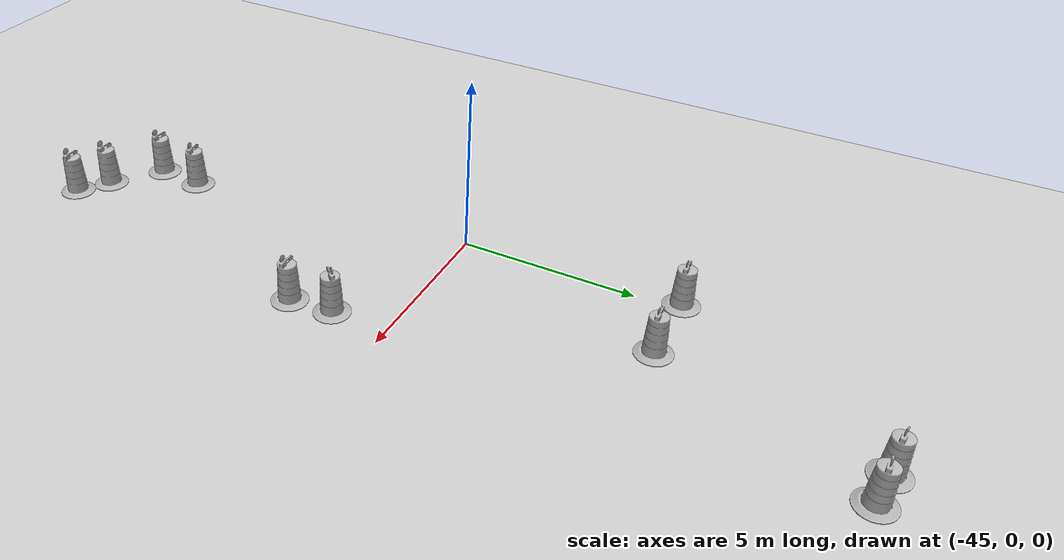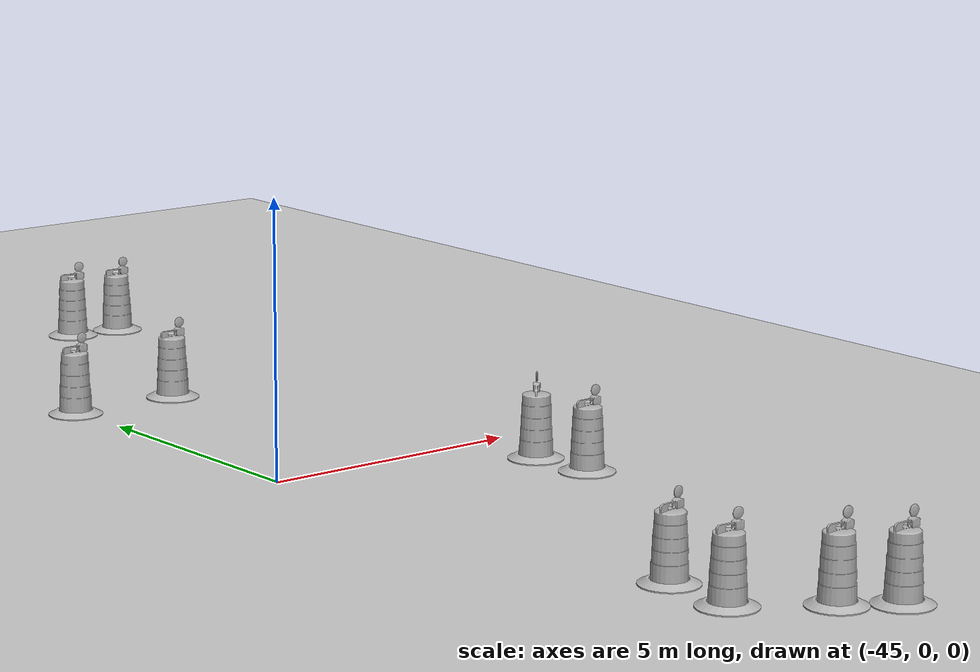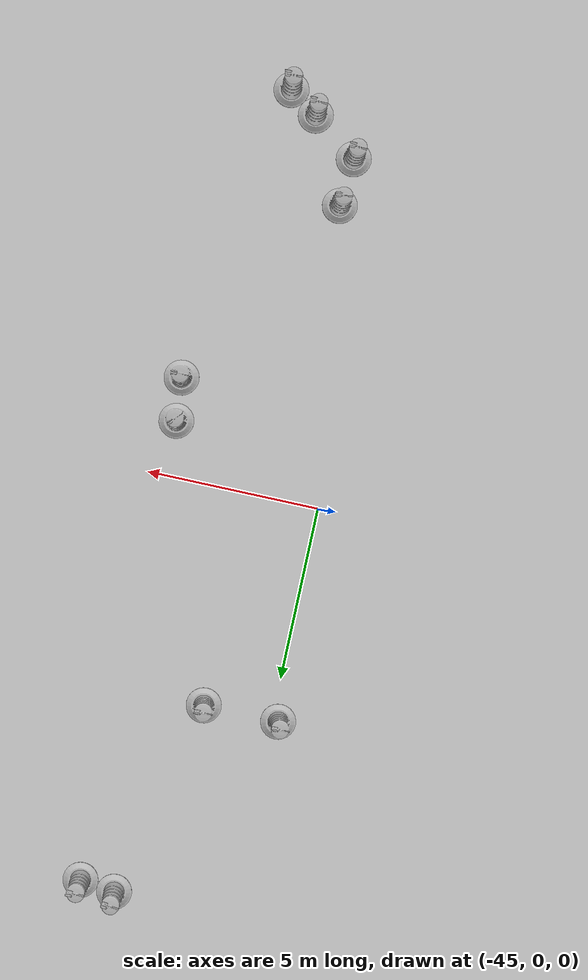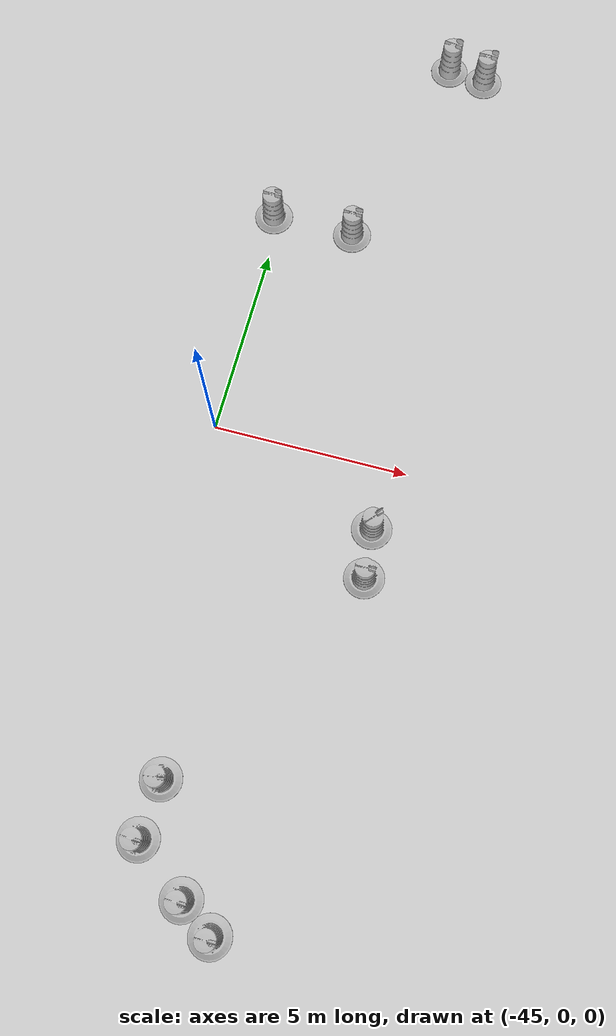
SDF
<sdf version="1.7">
 <world name="default">
  <model name="ground_plane">
   <static>1</static>
   <link name="link">
    <collision name="collision">
     <geometry><plane><normal>0 0 1</normal><size>100 100</size></plane></geometry>
     <surface>
      <contact><collide_bitmask>65535</collide_bitmask></contact>
      <friction><ode><mu>100</mu><mu2>50</mu2></ode></friction>
     </surface>
    </collision>
    <visual name="visual">
     <cast_shadows>0</cast_shadows>
     <geometry><plane><normal>0 0 1</normal><size>100 100</size></plane></geometry>
     <material>
      <script><uri>file://media/materials/scripts/gazebo.material</uri><name>Gazebo/Grey</name></script>
     </material>
    </visual>
   </link>
  </model>
  <model name="Construction Barrel_2">
   <link name="link">
    <inertial>
     <pose>0 0 0.4 0 -0 0</pose>
     <mass>500</mass>
     <inertia><ixx>51.2096</ixx><iyy>51.2096</iyy><izz>25</izz><ixy>0</ixy><ixz>0</ixz><iyz>0</iyz></inertia>
    </inertial>
    <collision name="collision">
     <geometry><mesh><uri>model://construction_barrel/meshes/construction_barrel.dae</uri></mesh></geometry>
    </collision>
    <visual name="visual">
     <geometry><mesh><uri>model://construction_barrel/meshes/construction_barrel.dae</uri></mesh></geometry>
    </visual>
   </link>
   <pose>-43.7577 -8.63429 0.024556 -1e-06 -1e-06 0.11968</pose>
  </model>
  <model name="Construction Barrel_3">
   <link name="link">
    <inertial>
     <pose>0 0 0.4 0 -0 0</pose>
     <mass>500</mass>
     <inertia><ixx>51.2096</ixx><iyy>51.2096</iyy><izz>25</izz><ixy>0</ixy><ixz>0</ixz><iyz>0</iyz></inertia>
    </inertial>
    <collision name="collision">
     <geometry><mesh><uri>model://construction_barrel/meshes/construction_barrel.dae</uri></mesh></geometry>
    </collision>
    <visual name="visual">
     <geometry><mesh><uri>model://construction_barrel/meshes/construction_barrel.dae</uri></mesh></geometry>
    </visual>
   </link>
   <pose>-43.8611 -10.0318 0.024555 2e-06 -0 -0.057818</pose>
  </model>
  <model name="Construction Barrel_4">
   <link name="link">
    <inertial>
     <pose>0 0 0.4 0 -0 0</pose>
     <mass>500</mass>
     <inertia><ixx>51.2096</ixx><iyy>51.2096</iyy><izz>25</izz><ixy>0</ixy><ixz>0</ixz><iyz>0</iyz></inertia>
    </inertial>
    <collision name="collision">
     <geometry><mesh><uri>model://construction_barrel/meshes/construction_barrel.dae</uri></mesh></geometry>
    </collision>
    <visual name="visual">
     <geometry><mesh><uri>model://construction_barrel/meshes/construction_barrel.dae</uri></mesh></geometry>
    </visual>
   </link>
   <pose>-41.6909 -11.5921 0.024556 -1e-06 -2e-06 0.0113</pose>
  </model>
  <model name="Construction Barrel_5">
   <link name="link">
    <inertial>
     <pose>0 0 0.4 0 -0 0</pose>
     <mass>500</mass>
     <inertia><ixx>51.2096</ixx><iyy>51.2096</iyy><izz>25</izz><ixy>0</ixy><ixz>0</ixz><iyz>0</iyz></inertia>
    </inertial>
    <collision name="collision">
     <geometry><mesh><uri>model://construction_barrel/meshes/construction_barrel.dae</uri></mesh></geometry>
    </collision>
    <visual name="visual">
     <geometry><mesh><uri>model://construction_barrel/meshes/construction_barrel.dae</uri></mesh></geometry>
    </visual>
   </link>
   <pose>-42.5303 -11.0218 0.024555 -1e-06 -4e-06 -0.032401</pose>
  </model>
  <model name="Construction Barrel_7">
   <link name="link">
    <inertial>
     <pose>0 0 0.4 0 -0 0</pose>
     <mass>500</mass>
     <inertia><ixx>51.2096</ixx><iyy>51.2096</iyy><izz>25</izz><ixy>0</ixy><ixz>0</ixz><iyz>0</iyz></inertia>
    </inertial>
    <collision name="collision">
     <geometry><mesh><uri>model://construction_barrel/meshes/construction_barrel.dae</uri></mesh></geometry>
    </collision>
    <visual name="visual">
     <geometry><mesh><uri>model://construction_barrel/meshes/construction_barrel.dae</uri></mesh></geometry>
    </visual>
   </link>
   <pose>-40.4928 -1.60632 0.024555 -0 -3e-06 0.838787</pose>
  </model>
  <model name="Construction Barrel_8">
   <link name="link">
    <inertial>
     <pose>0 0 0.4 0 -0 0</pose>
     <mass>500</mass>
     <inertia><ixx>51.2096</ixx><iyy>51.2096</iyy><izz>25</izz><ixy>0</ixy><ixz>0</ixz><iyz>0</iyz></inertia>
    </inertial>
    <collision name="collision">
     <geometry><mesh><uri>model://construction_barrel/meshes/construction_barrel.dae</uri></mesh></geometry>
    </collision>
    <visual name="visual">
     <geometry><mesh><uri>model://construction_barrel/meshes/construction_barrel.dae</uri></mesh></geometry>
    </visual>
   </link>
   <pose>-45.1878 6.21229 0.024555 4e-06 1e-06 0.000161</pose>
  </model>
  <model name="Construction Barrel_9">
   <link name="link">
    <inertial>
     <pose>0 0 0.4 0 -0 0</pose>
     <mass>500</mass>
     <inertia><ixx>51.2096</ixx><iyy>51.2096</iyy><izz>25</izz><ixy>0</ixy><ixz>0</ixz><iyz>0</iyz></inertia>
    </inertial>
    <collision name="collision">
     <geometry><mesh><uri>model://construction_barrel/meshes/construction_barrel.dae</uri></mesh></geometry>
    </collision>
    <visual name="visual">
     <geometry><mesh><uri>model://construction_barrel/meshes/construction_barrel.dae</uri></mesh></geometry>
    </visual>
   </link>
   <pose>-40.3738 -2.85059 0.024555 -1e-06 -2e-06 0.000153</pose>
  </model>
  <model name="Construction Barrel_10">
   <link name="link">
    <inertial>
     <pose>0 0 0.4 0 -0 0</pose>
     <mass>500</mass>
     <inertia><ixx>51.2096</ixx><iyy>51.2096</iyy><izz>25</izz><ixy>0</ixy><ixz>0</ixz><iyz>0</iyz></inertia>
    </inertial>
    <collision name="collision">
     <geometry><mesh><uri>model://construction_barrel/meshes/construction_barrel.dae</uri></mesh></geometry>
    </collision>
    <visual name="visual">
     <geometry><mesh><uri>model://construction_barrel/meshes/construction_barrel.dae</uri></mesh></geometry>
    </visual>
   </link>
   <pose>-43.0026 6.20755 0.024556 -1e-06 -2e-06 0.000148</pose>
  </model>
  <model name="Construction Barrel_24">
   <link name="link">
    <inertial>
     <pose>0 0 0.4 0 -0 0</pose>
     <mass>500</mass>
     <inertia><ixx>51.2096</ixx><iyy>51.2096</iyy><izz>25</izz><ixy>0</ixy><ixz>0</ixz><iyz>0</iyz></inertia>
    </inertial>
    <collision name="collision">
     <geometry><mesh><uri>model://construction_barrel/meshes/construction_barrel.dae</uri></mesh></geometry>
    </collision>
    <visual name="visual">
     <geometry><mesh><uri>model://construction_barrel/meshes/construction_barrel.dae</uri></mesh></geometry>
    </visual>
   </link>
   <pose>-40.615 11.8564 0.024555 3e-06 0 -0.034125</pose>
  </model>
  <model name="Construction Barrel_25">
   <link name="link">
    <inertial>
     <pose>0 0 0.4 0 -0 0</pose>
     <mass>500</mass>
     <inertia><ixx>51.2096</ixx><iyy>51.2096</iyy><izz>25</izz><ixy>0</ixy><ixz>0</ixz><iyz>0</iyz></inertia>
    </inertial>
    <collision name="collision">
     <geometry><mesh><uri>model://construction_barrel/meshes/construction_barrel.dae</uri></mesh></geometry>
    </collision>
    <visual name="visual">
     <geometry><mesh><uri>model://construction_barrel/meshes/construction_barrel.dae</uri></mesh></geometry>
    </visual>
   </link>
   <pose>-41.6282 11.9837 0.024556 0 -2e-06 -0.120431</pose>
  </model>
 </world>
</sdf>
